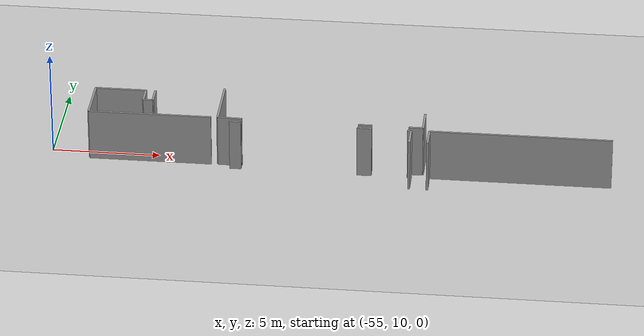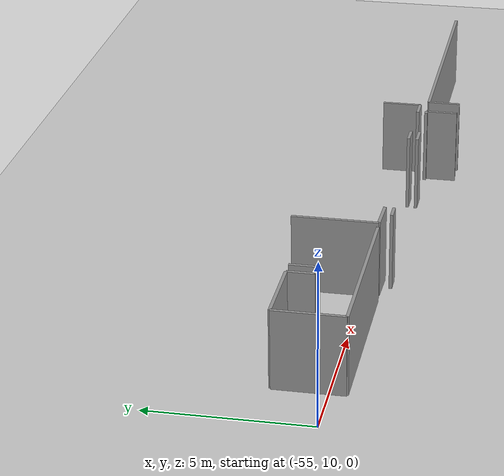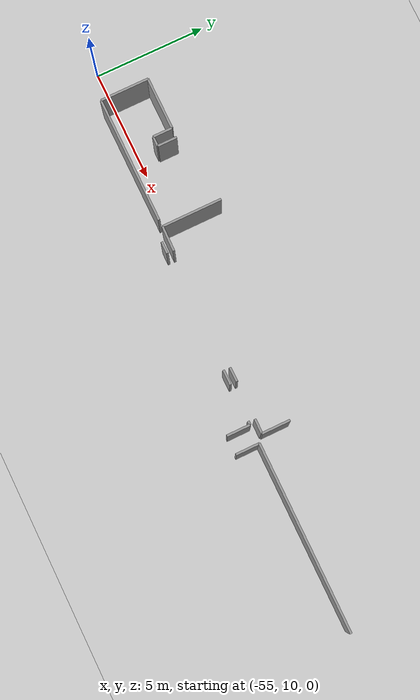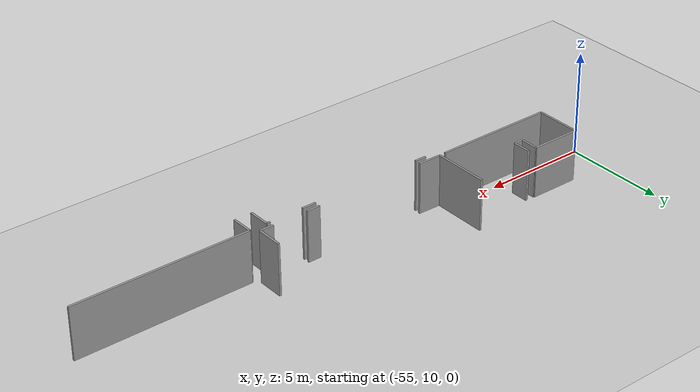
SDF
<sdf version="1.6">
 <world name="default">
  <model name="ground_plane">
   <static>1</static>
   <link name="link">
    <collision name="collision">
     <geometry><plane><normal>0 0 1</normal><size>100 100</size></plane></geometry>
     <surface><friction><ode><mu>100</mu><mu2>50</mu2></ode></friction></surface>
    </collision>
    <visual name="visual">
     <cast_shadows>0</cast_shadows>
     <geometry><plane><normal>0 0 1</normal><size>100 100</size></plane></geometry>
     <material>
      <script><uri>file://media/materials/scripts/gazebo.material</uri><name>Gazebo/Grey</name></script>
     </material>
    </visual>
   </link>
  </model>
  <model name="50045366">
   <static>1</static>
   <link name="Wall_7">
    <collision name="Wall_7_Collision">
     <geometry><box><size>2.1705554356 0.1 2.5</size></box></geometry>
     <pose>1.0852777178 0 1.25 0 0 0</pose>
    </collision>
    <visual name="Wall_7_Visual">
     <pose>1.0852777178 0 1.25 0 0 0</pose>
     <geometry><box><size>2.1705554356 0.1 2.5</size></box></geometry>
     <material>
      <script><uri>file://media/materials/scripts/gazebo.material</uri><name>Gazebo/Grey</name></script>
      <ambient>1 1 1 1</ambient>
     </material>
    </visual>
    <pose>0.902820998082 -15.8468709911 0 0 0 1.57079632679</pose>
   </link>
   <link name="Wall_8">
    <collision name="Wall_8_Collision">
     <geometry><box><size>2.36260177059 0.1 2.5</size></box></geometry>
     <pose>1.18130088529 0 1.25 0 0 0</pose>
    </collision>
    <visual name="Wall_8_Visual">
     <pose>1.18130088529 0 1.25 0 0 0</pose>
     <geometry><box><size>2.36260177059 0.1 2.5</size></box></geometry>
     <material>
      <script><uri>file://media/materials/scripts/gazebo.material</uri><name>Gazebo/Grey</name></script>
      <ambient>1 1 1 1</ambient>
     </material>
    </visual>
    <pose>0.902820998082 -13.6763155555 0 0 0 0.0</pose>
   </link>
   <link name="Wall_9">
    <collision name="Wall_9_Collision">
     <geometry><box><size>0.864462536993 0.1 2.5</size></box></geometry>
     <pose>0.432231268497 0 1.25 0 0 0</pose>
    </collision>
    <visual name="Wall_9_Visual">
     <pose>0.432231268497 0 1.25 0 0 0</pose>
     <geometry><box><size>0.864462536993 0.1 2.5</size></box></geometry>
     <material>
      <script><uri>file://media/materials/scripts/gazebo.material</uri><name>Gazebo/Grey</name></script>
      <ambient>1 1 1 1</ambient>
     </material>
    </visual>
    <pose>3.26542276867 -13.6763155555 0 0 0 -1.57079632679</pose>
   </link>
   <link name="Wall_10">
    <collision name="Wall_10_Collision">
     <geometry><box><size>0.441757376383 0.1 2.5</size></box></geometry>
     <pose>0.220878688191 0 1.25 0 0 0</pose>
    </collision>
    <visual name="Wall_10_Visual">
     <pose>0.220878688191 0 1.25 0 0 0</pose>
     <geometry><box><size>0.441757376383 0.1 2.5</size></box></geometry>
     <material>
      <script><uri>file://media/materials/scripts/gazebo.material</uri><name>Gazebo/Grey</name></script>
      <ambient>1 1 1 1</ambient>
     </material>
    </visual>
    <pose>3.26542276867 -14.5407780925 0 0 0 0.0</pose>
   </link>
   <link name="Wall_11">
    <collision name="Wall_11_Collision">
     <geometry><box><size>0.873988644879 0.1 2.5</size></box></geometry>
     <pose>0.43699432244 0 1.25 0 0 0</pose>
    </collision>
    <visual name="Wall_11_Visual">
     <pose>0.43699432244 0 1.25 0 0 0</pose>
     <geometry><box><size>0.873988644879 0.1 2.5</size></box></geometry>
     <material>
      <script><uri>file://media/materials/scripts/gazebo.material</uri><name>Gazebo/Grey</name></script>
      <ambient>1 1 1 1</ambient>
     </material>
    </visual>
    <pose>3.70718014505 -14.5407780925 0 0 0 1.57079632679</pose>
   </link>
   <link name="Wall_15">
    <collision name="Wall_15_Collision">
     <geometry><box><size>5.68785668816 0.1 2.5</size></box></geometry>
     <pose>2.84392834408 0 1.25 0 0 0</pose>
    </collision>
    <visual name="Wall_15_Visual">
     <pose>2.84392834408 0 1.25 0 0 0</pose>
     <geometry><box><size>5.68785668816 0.1 2.5</size></box></geometry>
     <material>
      <script><uri>file://media/materials/scripts/gazebo.material</uri><name>Gazebo/Grey</name></script>
      <ambient>1 1 1 1</ambient>
     </material>
    </visual>
    <pose>6.59066949486 -15.8372178684 0 0 0 -3.13989550688</pose>
   </link>
   <link name="Wall_16">
    <collision name="Wall_16_Collision">
     <geometry><box><size>2.6802657149 0.1 2.5</size></box></geometry>
     <pose>1.34013285745 0 1.25 0 0 0</pose>
    </collision>
    <visual name="Wall_16_Visual">
     <pose>1.34013285745 0 1.25 0 0 0</pose>
     <geometry><box><size>2.6802657149 0.1 2.5</size></box></geometry>
     <material>
      <script><uri>file://media/materials/scripts/gazebo.material</uri><name>Gazebo/Grey</name></script>
      <ambient>1 1 1 1</ambient>
     </material>
    </visual>
    <pose>6.89575897677 -15.8175305788 0 0 0 1.57079632679</pose>
   </link>
   <link name="Wall_28">
    <collision name="Wall_28_Collision">
     <geometry><box><size>1.26366996482 0.1 2.5</size></box></geometry>
     <pose>0.631834982408 0 1.25 0 0 0</pose>
    </collision>
    <visual name="Wall_28_Visual">
     <pose>0.631834982408 0 1.25 0 0 0</pose>
     <geometry><box><size>1.26366996482 0.1 2.5</size></box></geometry>
     <material>
      <script><uri>file://media/materials/scripts/gazebo.material</uri><name>Gazebo/Grey</name></script>
      <ambient>1 1 1 1</ambient>
     </material>
    </visual>
    <pose>16.3870648156 -14.5791365536 0 0 0 -1.57079632679</pose>
   </link>
   <link name="Wall_29">
    <collision name="Wall_29_Collision">
     <geometry><box><size>0.651966823742 0.1 2.5</size></box></geometry>
     <pose>0.325983411871 0 1.25 0 0 0</pose>
    </collision>
    <visual name="Wall_29_Visual">
     <pose>0.325983411871 0 1.25 0 0 0</pose>
     <geometry><box><size>0.651966823742 0.1 2.5</size></box></geometry>
     <material>
      <script><uri>file://media/materials/scripts/gazebo.material</uri><name>Gazebo/Grey</name></script>
      <ambient>1 1 1 1</ambient>
     </material>
    </visual>
    <pose>16.3870648156 -15.8428065184 0 0 0 3.14159265359</pose>
   </link>
   <link name="Wall_30">
    <collision name="Wall_30_Collision">
     <geometry><box><size>0.647775336272 0.1 2.5</size></box></geometry>
     <pose>0.323887668136 0 1.25 0 0 0</pose>
    </collision>
    <visual name="Wall_30_Visual">
     <pose>0.323887668136 0 1.25 0 0 0</pose>
     <geometry><box><size>0.647775336272 0.1 2.5</size></box></geometry>
     <material>
      <script><uri>file://media/materials/scripts/gazebo.material</uri><name>Gazebo/Grey</name></script>
      <ambient>1 1 1 1</ambient>
     </material>
    </visual>
    <pose>14.041737054 -15.8428065184 0 0 0 3.14159265359</pose>
   </link>
   <link name="Wall_31">
    <collision name="Wall_31_Collision">
     <geometry><box><size>1.12830133685 0.1 2.5</size></box></geometry>
     <pose>0.564150668426 0 1.25 0 0 0</pose>
    </collision>
    <visual name="Wall_31_Visual">
     <pose>0.564150668426 0 1.25 0 0 0</pose>
     <geometry><box><size>1.12830133685 0.1 2.5</size></box></geometry>
     <material>
      <script><uri>file://media/materials/scripts/gazebo.material</uri><name>Gazebo/Grey</name></script>
      <ambient>1 1 1 1</ambient>
     </material>
    </visual>
    <pose>8.02377716528 -15.8428065184 0 0 0 3.11918901609</pose>
   </link>
   <link name="Wall_39">
    <collision name="Wall_39_Collision">
     <geometry><box><size>0.54286113475 0.1 2.5</size></box></geometry>
     <pose>0.271430567375 0 1.25 0 0 0</pose>
    </collision>
    <visual name="Wall_39_Visual">
     <pose>0.271430567375 0 1.25 0 0 0</pose>
     <geometry><box><size>0.54286113475 0.1 2.5</size></box></geometry>
     <material>
      <script><uri>file://media/materials/scripts/gazebo.material</uri><name>Gazebo/Grey</name></script>
      <ambient>1 1 1 1</ambient>
     </material>
    </visual>
    <pose>7.46745246472 -16.1270655777 0 0 0 0.0</pose>
   </link>
   <link name="Wall_40">
    <collision name="Wall_40_Collision">
     <geometry><box><size>0.673305305407 0.1 2.5</size></box></geometry>
     <pose>0.336652652704 0 1.25 0 0 0</pose>
    </collision>
    <visual name="Wall_40_Visual">
     <pose>0.336652652704 0 1.25 0 0 0</pose>
     <geometry><box><size>0.673305305407 0.1 2.5</size></box></geometry>
     <material>
      <script><uri>file://media/materials/scripts/gazebo.material</uri><name>Gazebo/Grey</name></script>
      <ambient>1 1 1 1</ambient>
     </material>
    </visual>
    <pose>13.3738933838 -16.1270655777 0 0 0 0.0</pose>
   </link>
   <link name="Wall_41">
    <collision name="Wall_41_Collision">
     <geometry><box><size>0.164738159048 0.1 2.5</size></box></geometry>
     <pose>0.082369079524 0 1.25 0 0 0</pose>
    </collision>
    <visual name="Wall_41_Visual">
     <pose>0.082369079524 0 1.25 0 0 0</pose>
     <geometry><box><size>0.164738159048 0.1 2.5</size></box></geometry>
     <material>
      <script><uri>file://media/materials/scripts/gazebo.material</uri><name>Gazebo/Grey</name></script>
      <ambient>1 1 1 1</ambient>
     </material>
    </visual>
    <pose>15.694961324 -16.1270655777 0 0 0 0.0</pose>
   </link>
   <link name="Wall_42">
    <collision name="Wall_42_Collision">
     <geometry><box><size>1.04139411414 0.1 2.5</size></box></geometry>
     <pose>0.520697057068 0 1.25 0 0 0</pose>
    </collision>
    <visual name="Wall_42_Visual">
     <pose>0.520697057068 0 1.25 0 0 0</pose>
     <geometry><box><size>1.04139411414 0.1 2.5</size></box></geometry>
     <material>
      <script><uri>file://media/materials/scripts/gazebo.material</uri><name>Gazebo/Grey</name></script>
      <ambient>1 1 1 1</ambient>
     </material>
    </visual>
    <pose>15.859699483 -16.1270655777 0 0 0 -1.57079632679</pose>
   </link>
   <link name="Wall_44">
    <collision name="Wall_44_Collision">
     <geometry><box><size>1.05968424128 0.1 2.5</size></box></geometry>
     <pose>0.529842120639 0 1.25 0 0 0</pose>
    </collision>
    <visual name="Wall_44_Visual">
     <pose>0.529842120639 0 1.25 0 0 0</pose>
     <geometry><box><size>1.05968424128 0.1 2.5</size></box></geometry>
     <material>
      <script><uri>file://media/materials/scripts/gazebo.material</uri><name>Gazebo/Grey</name></script>
      <ambient>1 1 1 1</ambient>
     </material>
    </visual>
    <pose>16.6999021986 -17.1684596919 0 0 0 1.57079632679</pose>
   </link>
   <link name="Wall_45">
    <collision name="Wall_45_Collision">
     <geometry><box><size>8.38284792521 0.1 2.5</size></box></geometry>
     <pose>4.19142396261 0 1.25 0 0 0</pose>
    </collision>
    <visual name="Wall_45_Visual">
     <pose>4.19142396261 0 1.25 0 0 0</pose>
     <geometry><box><size>8.38284792521 0.1 2.5</size></box></geometry>
     <material>
      <script><uri>file://media/materials/scripts/gazebo.material</uri><name>Gazebo/Grey</name></script>
      <ambient>1 1 1 1</ambient>
     </material>
    </visual>
    <pose>16.6999021986 -16.1087754506 0 0 0 0.0</pose>
   </link>
   <pose>-54.1 25.3531975969 0 0 0 0</pose>
  </model>
 </world>
</sdf>
